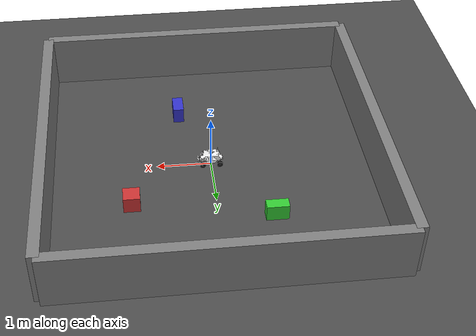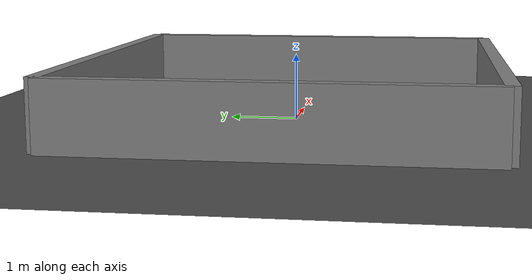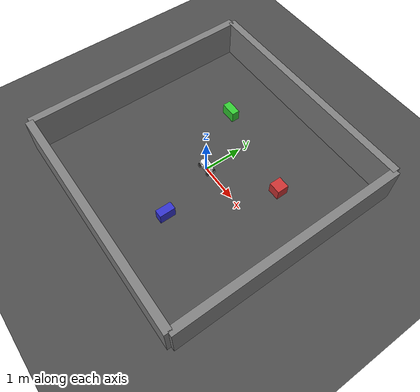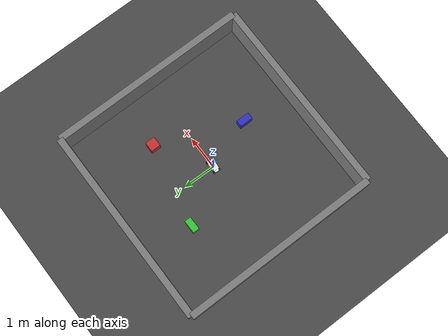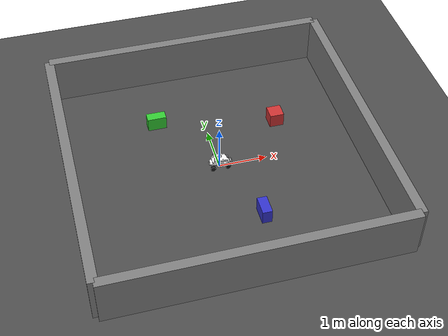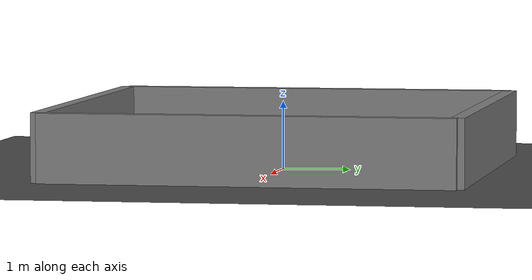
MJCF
<mujoco model="scorpio">

  <compiler angle="radian" meshdir="meshes" autolimits="true"/>

  <visual>
    <global offwidth="1280" offheight="960"/>
  </visual>

  <option timestep="0.001" gravity="0 0 -9.81" integrator="RK4">
    <flag contact="enable"/>
  </option>

  <size nconmax="200" njmax="400"/>

  <default>
    <joint damping="0.01" frictionloss="0.001"/>
    <geom contype="1" conaffinity="1" friction="0.9 0.02 0.01"/>
  </default>

  <asset>
    <texture type="skybox" builtin="gradient" rgb1="0.4 0.45 0.5" rgb2="0.05 0.05 0.08" width="512" height="512"/>
    <texture name="grid" type="2d" builtin="checker" rgb1="0.25 0.25 0.25" rgb2="0.35 0.35 0.35" width="512" height="512"/>
    <material name="grid_mat" texture="grid" texrepeat="20 20" reflectance="0.0"/>

    <material name="white_plastic" rgba="0.95 0.95 0.95 1" specular="0.3" shininess="0.5"/>
    <material name="black_rubber" rgba="0.12 0.12 0.12 1" specular="0.05" shininess="0.05"/>
    <material name="dark_grey" rgba="0.35 0.35 0.38 1"/>
    <material name="aluminum" rgba="0.6 0.6 0.62 1" specular="0.5" shininess="0.7"/>
    <material name="sensor_black" rgba="0.08 0.08 0.08 1"/>

    <mesh name="body_mesh" file="scorpio.obj"/>
    <mesh name="left_wheel_mesh" file="left_wheel.obj"/>
    <mesh name="right_wheel_mesh" file="right_wheel.obj"/>
    <mesh name="d435_mesh" file="d435.obj"/>
    <mesh name="ydlidar_g6_mesh" file="ydlidar_g6.obj"/>
  </asset>

  <worldbody>
    <light name="sun" pos="2 2 4" dir="-1 -1 -2" diffuse="0.8 0.8 0.8" specular="0.3 0.3 0.3" castshadow="true"/>
    <light name="ambient" pos="0 0 3" dir="0 0 -1" diffuse="0.45 0.45 0.45"/>
    <geom name="ground" type="plane" size="20 20 0.1" material="grid_mat" contype="1" conaffinity="7"/>

    <!-- ===== SCORPIO ROBOT ===== -->
    <!-- base_footprint 在 URDF 中与 base_link 重合 (地面高度) -->
    <body name="base_footprint" pos="0 0 0">
      <freejoint name="base_freejoint"/>

      <body name="base_link" pos="0 0 0">

        <!-- ===== 车体 (room_base_link) ===== -->
        <!-- URDF: joint origin (0,0,0), mesh 顶点自带 z=[0.0325, 0.3101] -->
        <body name="room_base_link" pos="0 0 0">
          <inertial pos="0 0 0.17" mass="3.5"
                    fullinertia="0.035 0.035 0.05 0 0 0"/>
          <!-- 视觉 mesh: pos 必须为 0, mesh 自带正确坐标 -->
          <geom name="body_visual" type="mesh" mesh="body_mesh"
                pos="0 0 0" material="white_plastic"
                contype="0" conaffinity="0" group="1"/>
          <geom name="body_collision" type="box"
                pos="0 0 0.1463" size="0.211 0.095 0.1138"
                rgba="1 1 1 0" contype="1" conaffinity="4"/>
        </body>

        <!-- ===== IMU ===== -->
        <!-- URDF: origin xyz="0.16 0.04 0.175" -->
        <site name="imu_site" pos="0.16 0.04 0.175"/>

        <!-- ===== 后轮 (驱动) ===== -->
        <!-- URDF: left_back_wheel  (-0.1575,  0.0928, 0.0525) -->
        <body name="left_rear_wheel" pos="-0.1575 0.0928 0.0525">
          <joint name="left_rear_wheel_joint" type="hinge" axis="0 1 0"
                 damping="0.01" frictionloss="0.001"/>
          <inertial pos="0 0 0" mass="0.3"
                    fullinertia="0.0005 0.0005 0.0003 0 0 0"/>
          <geom name="lr_wheel_visual" type="mesh" mesh="left_wheel_mesh"
                pos="0 0 0" material="black_rubber" contype="0" conaffinity="0"/>
          <geom name="lr_wheel_collision" type="cylinder"
                size="0.0525 0.022" quat="0.707 0.707 0 0"
                material="black_rubber" friction="1.2 0.01 0.005" contype="1" conaffinity="4"/>
        </body>

        <!-- URDF: right_back_wheel (-0.1575, -0.0928, 0.0525) -->
        <body name="right_rear_wheel" pos="-0.1575 -0.0928 0.0525">
          <joint name="right_rear_wheel_joint" type="hinge" axis="0 1 0"
                 damping="0.01" frictionloss="0.001"/>
          <inertial pos="0 0 0" mass="0.3"
                    fullinertia="0.0005 0.0005 0.0003 0 0 0"/>
          <geom name="rr_wheel_visual" type="mesh" mesh="right_wheel_mesh"
                pos="0 0 0" material="black_rubber" contype="0" conaffinity="0"/>
          <geom name="rr_wheel_collision" type="cylinder"
                size="0.0525 0.022" quat="0.707 0.707 0 0"
                material="black_rubber" friction="1.2 0.01 0.005" contype="1" conaffinity="4"/>
        </body>

        <!-- ===== 前轮 (转向) ===== -->
        <!-- 转向体位于前轴中心 (0.1575, 0, 0.0525) -->
        <body name="steering_assembly" pos="0.1575 0 0.0525">
          <joint name="steering_joint" type="hinge" axis="0 0 1"
                 damping="0.5" frictionloss="0.02" range="-0.785 0.785"/>
          <inertial pos="0 0 0" mass="0.15"
                    fullinertia="0.0001 0.0001 0.0001 0 0 0"/>

          <!-- URDF: left_front_wheel (0.1575, 0.0928, 0.0525) → 相对转向体 (0, 0.0928, 0) -->
          <body name="left_front_wheel" pos="0 0.0928 0">
            <joint name="left_front_wheel_joint" type="hinge" axis="0 1 0"
                   damping="0.01" frictionloss="0.001"/>
            <inertial pos="0 0 0" mass="0.3"
                      fullinertia="0.0005 0.0005 0.0003 0 0 0"/>
            <geom name="lf_wheel_visual" type="mesh" mesh="left_wheel_mesh"
                  pos="0 0 0" material="black_rubber" contype="0" conaffinity="0"/>
            <geom name="lf_wheel_collision" type="cylinder"
                  size="0.0525 0.022" quat="0.707 0.707 0 0"
                  material="black_rubber" friction="1.2 0.01 0.005" contype="1" conaffinity="4"/>
          </body>

          <!-- URDF: right_front_wheel (0.1575, -0.0928, 0.0525) -->
          <body name="right_front_wheel" pos="0 -0.0928 0">
            <joint name="right_front_wheel_joint" type="hinge" axis="0 1 0"
                   damping="0.01" frictionloss="0.001"/>
            <inertial pos="0 0 0" mass="0.3"
                      fullinertia="0.0005 0.0005 0.0003 0 0 0"/>
            <geom name="rf_wheel_visual" type="mesh" mesh="right_wheel_mesh"
                  pos="0 0 0" material="black_rubber" contype="0" conaffinity="0"/>
            <geom name="rf_wheel_collision" type="cylinder"
                  size="0.0525 0.022" quat="0.707 0.707 0 0"
                  material="black_rubber" friction="1.2 0.01 0.005" contype="1" conaffinity="4"/>
          </body>
        </body>

        <!-- ===== YDLidar G6 360° 激光雷达 ===== -->
        <body name="lidar_link" pos="0 0 0.250">
          <inertial pos="0 0 0.02" mass="0.41"
                    fullinertia="6.8e-5 1.3e-4 7.2e-5 0 0 0"/>
          <!-- YDLidar G6 实际外形网格 (底座在 z=0, 高 42.9mm) -->
          <geom name="lidar_body" type="mesh" mesh="ydlidar_g6_mesh"
                material="aluminum" contype="0" conaffinity="0"/>
          <!-- 激光扫描中心 (对应 URDF laser_frame: lidar_link + 0.03172) -->
          <site name="lidar_site" pos="0 0 0.03172" euler="0 0 0"/>
        </body>

        <!-- ===== Intel RealSense D435 深度相机 ===== -->
        <body name="d435_camera" pos="0.1706 0.0175 0.242">
          <inertial pos="0 0 0" mass="0.072"
                    fullinertia="3.9e-3 5.0e-4 3.9e-3 0 0 0"/>

          <!-- D435 外壳 mesh
               URDF visual origin: xyz=(0.0043, -0.0175, 0), rpy=(pi/2, 0, pi/2)
               quat(0.5,0.5,0.5,0.5) 等价于该 rpy, 使 90mm 宽度沿 Y 轴 -->
          <geom name="d435_visual" type="mesh" mesh="d435_mesh"
                pos="0.0043 -0.0175 0" quat="0.5 0.5 0.5 0.5"
                material="aluminum" contype="0" conaffinity="0"/>
          <!-- D435 碰撞体: URDF collision size=(0.02505, 0.090, 0.025) -->
          <geom name="d435_collision" type="box" size="0.012525 0.045 0.0125"
                pos="0 -0.0175 0" rgba="1 1 1 0"
                contype="1" conaffinity="4"/>

          <!-- 深度相机 (光心朝前 +X) -->
          <camera name="d435_depth" pos="0.005 -0.0175 0"
                  quat="0.5 0.5 0.5 0.5" fovy="64" resolution="640 480"/>
          <!-- RGB 相机 (camera_color_frame = depth + (0, 0.015, 0)) -->
          <camera name="d435_rgb" pos="0.005 -0.0025 0"
                  quat="0.5 0.5 0.5 0.5" fovy="42" resolution="640 480"/>

          <!-- 深度测距 site (rangefinder 敏感轴 = site 的 +Z), 同样置于玻璃处 -->
          <site name="d435_depth_site" pos="0.005 -0.0175 0" euler="0 1.5708 0"/>
          <!-- 双目红外基线 50mm: infra1 居中, infra2 在 y=-0.05 -->
          <site name="d435_left_ir_site" pos="0.005 -0.0175 0" euler="0 1.5708 0"/>
          <site name="d435_right_ir_site" pos="0.005 -0.0675 0" euler="0 1.5708 0"/>
        </body>

      </body>
    </body>

    <!-- ===== 障碍物 ===== -->
    <body name="wall_1" pos="3 0 0.5">
      <geom type="box" size="0.1 3 0.5" rgba="0.5 0.5 0.5 1"/>
    </body>
    <body name="wall_2" pos="-3 0 0.5">
      <geom type="box" size="0.1 3 0.5" rgba="0.5 0.5 0.5 1"/>
    </body>
    <body name="wall_3" pos="0 3 0.5">
      <geom type="box" size="3 0.1 0.5" rgba="0.5 0.5 0.5 1"/>
    </body>
    <body name="wall_4" pos="0 -3 0.5">
      <geom type="box" size="3 0.1 0.5" rgba="0.5 0.5 0.5 1"/>
    </body>
    <body name="box_1" pos="1.5 1.0 0.15">
      <freejoint/>
      <geom type="box" size="0.15 0.15 0.15" rgba="0.8 0.2 0.2 1" mass="1.0"/>
    </body>
    <body name="box_2" pos="-1.0 1.5 0.15">
      <freejoint/>
      <geom type="box" size="0.2 0.1 0.15" rgba="0.2 0.8 0.2 1" mass="1.0"/>
    </body>
    <body name="box_3" pos="0.5 -1.5 0.15">
      <freejoint/>
      <geom type="box" size="0.1 0.2 0.15" rgba="0.2 0.2 0.8 1" mass="1.0"/>
    </body>
  </worldbody>

  <!-- ===== 执行器: 后轮力矩驱动 + 前轮位置转向 ===== -->
  <!-- ===== 执行器 ===== -->
  <actuator>
    <velocity name="left_rear_motor" joint="left_rear_wheel_joint"
              kv="1.0" ctrlrange="-30 30" forcerange="-1.5 1.5"/>
    <velocity name="right_rear_motor" joint="right_rear_wheel_joint"
              kv="1.0" ctrlrange="-30 30" forcerange="-1.5 1.5"/>
    <position name="steering_actuator" joint="steering_joint" kp="60" kv="8" ctrlrange="-0.785 0.785"/>
  </actuator>

  <!-- ===== 传感器 ===== -->
  <sensor>
    <accelerometer name="imu_accel" site="imu_site"/>
    <gyro name="imu_gyro" site="imu_site"/>
    <jointpos name="enc_left_rear" joint="left_rear_wheel_joint"/>
    <jointpos name="enc_right_rear" joint="right_rear_wheel_joint"/>
    <jointvel name="vel_left_rear" joint="left_rear_wheel_joint"/>
    <jointvel name="vel_right_rear" joint="right_rear_wheel_joint"/>
    <jointpos name="enc_left_front" joint="left_front_wheel_joint"/>
    <jointpos name="enc_right_front" joint="right_front_wheel_joint"/>
    <jointpos name="steering_angle" joint="steering_joint"/>
    <framepos name="base_pos" objtype="body" objname="base_link"/>
    <framequat name="base_quat" objtype="body" objname="base_link"/>
    <framelinvel name="base_linvel" objtype="body" objname="base_link"/>
    <frameangvel name="base_angvel" objtype="body" objname="base_link"/>
    <rangefinder name="d435_depth_center" site="d435_depth_site"/>
    <rangefinder name="d435_depth_left" site="d435_left_ir_site"/>
    <rangefinder name="d435_depth_right" site="d435_right_ir_site"/>
  </sensor>

  <!-- ===== LiDAR 仿真 (360° 扫描, 720点) ===== -->
  <!--
    MuJoCo 的 rangefinder 传感器只能测单方向距离，
    完整的 2D LiDAR 仿真需要在 Python 中用 mj_ray 实现。

    这里添加关键方向的 rangefinder 作为辅助:
    - 前方、左前方、右前方 (用于避障)
    - 左方、右方 (用于墙壁跟随)
  -->
  <sensor>
    <!-- LiDAR 关键方向测距 (添加在 lidar_link body 下) -->
  </sensor>
</mujoco>
